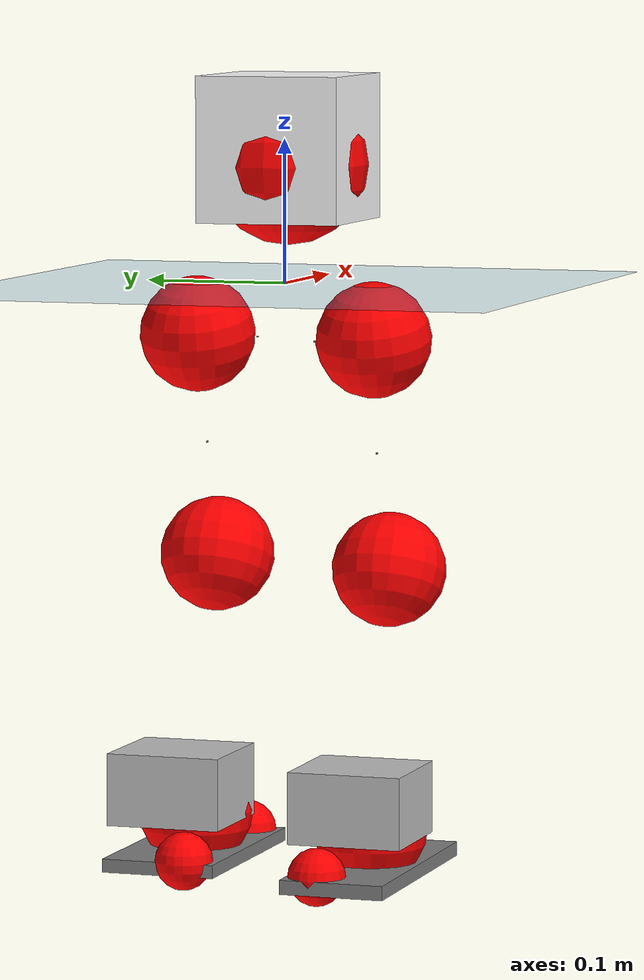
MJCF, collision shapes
<mujoco model="pi_12dof_release_v1">
  <compiler angle="radian" assetdir="assets" balanceinertia="true" inertiafromgeom="false"/>

  <option timestep="0.005" density="1.2" viscosity="2e-05"/>

  <size nkey="1"/>

  <visual>
    <quality shadowsize="8192"/>
    <map shadowclip="0.5"/>
  </visual>

  <default>
    <default class="/">
      <joint armature="0.01" damping="0.01" frictionloss="0.01"/>
      <geom contype="0" conaffinity="0" group="1" solref="-1000 -80"/>
      <site size="0.01 0.005 0.005" group="5"/>
      <general forcelimited="true" biastype="affine" gainprm="20" biasprm="0 -20 -0.5"/>
      <default class="foot">
        <geom size="0.0845 0.036 0.005" type="box" condim="6" group="4" priority="1" friction="0.9 0.2 0.2" solimp="0.015 1 0.005"/>
      </default>
      <default class="reward_collision_sphere">
        <geom group="5" rgba="1 0 0 1"/>
      </default>
    </default>
  </default>

  <asset>
    <texture type="skybox" colorspace="auto" name="//unnamed_texture_0" builtin="gradient" rgb1="0.95 0.95 0.95" rgb2="0.95 0.95 0.95" width="100" height="600"/>
    <texture type="2d" colorspace="auto" name="texplane" builtin="checker" rgb1="0.345 0.575 0.748" rgb2="0.345 0.575 0.748" markrgb="1 1 1" width="512" height="512"/>
    <material name="MatPlane" class="/" texture="texplane" texuniform="true" texrepeat="2 2" specular="0.9"/>
    <mesh name="baselink_1" class="/" file="baselink_1.STL"/>
    <mesh name="r_hip_pitch_link" class="/" file="r_hip_pitch_link.STL"/>
    <mesh name="r_hip_roll_link" class="/" file="r_hip_roll_link.STL"/>
    <mesh name="r_thigh_link" class="/" file="r_thigh_link.STL"/>
    <mesh name="r_calf_link" class="/" file="r_calf_link.STL"/>
    <mesh name="r_ankle_pitch_link" class="/" file="r_ankle_pitch_link.STL"/>
    <mesh name="r_ankle_roll_link" class="/" file="r_ankle_roll_link.STL"/>
    <mesh name="l_hip_pitch_link" class="/" file="l_hip_pitch_link.STL"/>
    <mesh name="l_hip_roll_link" class="/" file="l_hip_roll_link.STL"/>
    <mesh name="l_thigh_link" class="/" file="l_thigh_link.STL"/>
    <mesh name="l_calf_link" class="/" file="l_calf_link.STL"/>
    <mesh name="l_ankle_pitch_link" class="/" file="l_ankle_pitch_link.STL"/>
    <mesh name="l_ankle_roll_link" class="/" file="l_ankle_roll_link.STL"/>
  </asset>

  <worldbody>
    <geom name="floor" class="/" size="100 100 0.125" type="plane" group="0" material="MatPlane"/>
    <light name="toplight_shadow" class="/" pos="0 0 5" dir="0.0990148 0.0990148 -0.990148" type="directional" ambient="0.04 0.04 0.04" diffuse="0.55 0.55 0.55" specular="0.12 0.12 0.12"/>
    <light name="toplight_fill" class="/" pos="0 0 5" dir="0.0990148 0.0990148 -0.990148" type="directional" castshadow="false" ambient="0.04 0.04 0.04" diffuse="0.3 0.3 0.3" specular="0.08 0.08 0.08"/>
    <body name="trunk" pos="-0.000309613 -0.00281909 -0.000871543" quat="0.999999 -0.000298555 -0.00131787 0.000408602">
      <inertial pos="-7.08407e-05 -0.00196685 0.0509525" quat="0.703566 0.008408 0.0040936 0.710568" mass="2.22948" diaginertia="0.0102524 0.00314976 0.00998856"/>
      <joint name="//unnamed_joint_0" type="free"/>
      <geom name="//unnamed_geom_1" class="/" type="mesh" density="0" rgba="1 1 1 1" mesh="baselink_1"/>
      <geom name="//unnamed_geom_2" class="/" size="0.0503614 0.0503614 0.0503614" pos="0 0 0.0951378" type="box" rgba="1 1 1 1"/>
      <geom name="//unnamed_geom_3" class="reward_collision_sphere" size="0.0553975" pos="0 0 0.0832455"/>
      <site name="imu" class="/" pos="0.0052657 -0.00389317 -0.00383597" size="0.0100723"/>
      <camera name="track" class="/" pos="0 -1.62832 0" quat="0.707107 0.707107 0 0" mode="trackcom"/>
      <camera name="ego_camera" class="/" pos="0.0763727 0 0.21406" quat="-0.5 -0.5 0.5 0.5"/>
      <body name="r_hip_pitch_link" pos="0.00230241 -0.0180243 -0.0392138" quat="0.992216 -0.000281596 -0.124529 -0.000322386">
        <inertial pos="0.00146101 -0.0482872 -0.00175063" quat="-0.0229047 0.703929 -0.0279621 0.70935" mass="0.37653" diaginertia="0.000119747 3.40292e-05 0.000198423"/>
        <joint name="r_hip_pitch_joint" class="/" pos="0 0 0" axis="-0.0039417 -0.999978 -0.00528538" stiffness="0.00181562" range="-1.69256 1.29919" armature="0.0105396" damping="0.0217732" frictionloss="0.0111018"/>
        <geom name="//unnamed_geom_4" class="/" type="mesh" density="0" rgba="0.75294 0.75294 0.75294 1" mesh="r_hip_pitch_link"/>
        <geom name="//unnamed_geom_5" class="/" size="0.000503614 0.000503614 0.000503614" type="box" rgba="0.75294 0.75294 0.75294 1"/>
        <body name="r_hip_roll_link" pos="0.00298092 -0.0422356 0.00129472" quat="1 -5.0781e-05 0.00047558 -0.000545509">
          <inertial pos="-0.00264357 5.28399e-05 -0.0732465" quat="0.699958 -0.0791021 -0.0840126 0.704801" mass="0.411844" diaginertia="0.000357274 0.00010228 0.000306751"/>
          <joint name="r_hip_roll_joint" class="/" pos="0 0 0" axis="-0.999931 0.0116627 0.00144929" range="-0.117651 0.497946" armature="0.0115721" damping="0.023591" frictionloss="0.0106032"/>
          <geom name="//unnamed_geom_6" class="/" type="mesh" density="0" rgba="0.75294 0.75294 0.75294 1" mesh="r_hip_roll_link"/>
          <geom name="//unnamed_geom_7" class="/" size="0.000503614 0.000503614 0.000503614" type="box" rgba="0.75294 0.75294 0.75294 1"/>
          <geom name="//unnamed_geom_8" class="reward_collision_sphere" size="0.0402891"/>
          <body name="r_thigh_link" pos="0.0010045 0.00450336 -0.0838336" quat="1 0.000584784 1.97796e-05 -0.00054964">
            <inertial pos="-0.00183119 -0.00160282 -0.0592763" quat="0.741434 0.671021 0.000261268 0.00262813" mass="0.112844" diaginertia="0.000131584 3.35504e-05 0.000134764"/>
            <joint name="r_thigh_joint" class="/" pos="0 0 0" axis="0.00913848 -0.00513252 -0.999945" range="-0.336061 0.559242" armature="0.0114993" damping="0.00180397" frictionloss="0.0109956"/>
            <geom name="//unnamed_geom_9" class="/" type="mesh" density="0" rgba="0.75294 0.75294 0.75294 1" mesh="r_thigh_link"/>
            <geom name="//unnamed_geom_10" class="/" size="0.000503614 0.000503614 0.000503614" type="box" rgba="0.75294 0.75294 0.75294 1"/>
            <body name="r_calf_link" pos="-0.000853986 -0.00282832 -0.0862955" quat="0.947663 -9.97102e-06 0.319272 -2.63804e-05">
              <inertial pos="0.000255764 0.00112187 -0.0846843" quat="0.999961 0.00399835 -0.00780438 0.000829153" mass="0.817251" diaginertia="0.00372645 0.00125296 0.000422568"/>
              <joint name="r_calf_joint" class="/" pos="0 0 0" axis="0.00542074 -0.999971 0.00537386" range="-1.69961 0.661715" armature="0.0101588" damping="0" frictionloss="0.0111806"/>
              <geom name="//unnamed_geom_11" class="/" type="mesh" density="0" rgba="0.75294 0.75294 0.75294 1" mesh="r_calf_link"/>
              <geom name="//unnamed_geom_12" class="/" size="0.000503614 0.000503614 0.000503614" type="box" rgba="0.75294 0.75294 0.75294 1"/>
              <geom name="//unnamed_geom_13" class="reward_collision_sphere" size="0.0402891"/>
              <body name="r_ankle_pitch_link" pos="-0.00137223 -2.12449e-05 -0.168433" quat="0.98007 -3.09216e-05 -0.198652 7.05901e-06">
                <inertial pos="0.00708046 0.000216017 0.00177071" quat="0.00321618 0.70415 0.00278878 0.710039" mass="0.181668" diaginertia="0.000325716 7.94193e-05 0.000285258"/>
                <joint name="r_ankle_pitch_joint" class="/" pos="0 0 0" axis="0.000444602 -1 0.000595667" stiffness="0.000786026" range="-1.35376 0.459343" armature="0.0112502" damping="0.00687524" frictionloss="0.0112617"/>
                <geom name="//unnamed_geom_14" class="/" type="mesh" density="0" rgba="0.75294 0.75294 0.75294 1" mesh="r_ankle_pitch_link"/>
                <geom name="//unnamed_geom_15" class="/" size="0.0392819 0.0402891 0.0251807" type="box" rgba="0.75294 0.75294 0.75294 1"/>
                <body name="r_ankle_roll_link" pos="0.0772389 0.000821739 0.00203241" quat="1 9.15152e-05 -1.2813e-05 9.00981e-06">
                  <inertial pos="-0.0271409 0.00297669 -0.0181513" quat="0.556636 0.429803 0.442345 0.556557" mass="0.539399" diaginertia="0.0012367 0.000389046 0.000662947"/>
                  <joint name="r_ankle_roll_joint" class="/" pos="0 0 0" axis="-0.999993 0.00350562 0.00156377" stiffness="0.00936946" range="-0.123085 0.206443" armature="0.0106361" damping="0.0230758" frictionloss="0.0105373"/>
                  <geom name="//unnamed_geom_16" class="/" type="mesh" density="0" rgba="0.75294 0.75294 0.75294 1" mesh="r_ankle_roll_link"/>
                  <geom name="//unnamed_geom_17" class="/" type="mesh" rgba="0.75294 0.75294 0.75294 1" mesh="r_ankle_roll_link"/>
                  <geom name="right_foot" class="foot" size="0.089683 0.0367883 0.00500037" pos="-0.0519335 0 -0.0523258"/>
                  <geom name="//unnamed_geom_19" class="reward_collision_sphere" size="0.0402891" pos="-0.0509152 0 -0.0237844"/>
                  <geom name="//unnamed_geom_20" class="reward_collision_sphere" size="0.0201446" pos="0.0152745 0.0162832 -0.0475689"/>
                  <geom name="//unnamed_geom_21" class="reward_collision_sphere" size="0.0201446" pos="-0.122196 0.0162832 -0.0475689"/>
                  <site name="right_foot" class="foot" pos="-0.0519335 0 -0.0523258" size="0.0100723"/>
                </body>
              </body>
            </body>
          </body>
        </body>
      </body>
      <body name="l_hip_pitch_link" pos="-0.00306876 0.0215212 -0.0361871" quat="0.992243 -0.000256259 -0.124316 -1.25888e-05">
        <inertial pos="0.000446294 0.0436556 0.0027154" quat="-0.0385884 0.705604 0.0295093 0.706939" mass="0.383822" diaginertia="0.000138393 3.57767e-05 0.000242373"/>
        <joint name="l_hip_pitch_joint" class="/" pos="0 0 0" axis="0.00302656 0.999995 -0.00086741" stiffness="0.00896991" range="-1.27371 1.8034" armature="0.0103256" damping="0.00683817" frictionloss="0.00981012"/>
        <geom name="//unnamed_geom_22" class="/" type="mesh" density="0" rgba="0.75294 0.75294 0.75294 1" mesh="l_hip_pitch_link"/>
        <geom name="//unnamed_geom_23" class="/" size="0.000503614 0.000503614 0.000503614" type="box" rgba="0.75294 0.75294 0.75294 1"/>
        <body name="l_hip_roll_link" pos="-0.00191071 0.043224 0.00183412" quat="1 0.000320511 0.000881473 0.000199275">
          <inertial pos="-0.00278475 0.00112353 -0.0716281" quat="0.701836 -0.0807387 -0.0897326 0.702037" mass="0.389854" diaginertia="0.000354394 0.000102855 0.000315744"/>
          <joint name="l_hip_roll_joint" class="/" pos="0 0 0" axis="-0.999925 -0.0119283 0.00264114" stiffness="0.00412421" range="-0.500451 0.135818" armature="0.0107973" damping="0.00561926" frictionloss="0.00877796"/>
          <geom name="//unnamed_geom_24" class="/" type="mesh" density="0" rgba="0.75294 0.75294 0.75294 1" mesh="l_hip_roll_link"/>
          <geom name="//unnamed_geom_25" class="/" size="0.000503614 0.000503614 0.000503614" type="box" rgba="0.75294 0.75294 0.75294 1"/>
          <geom name="//unnamed_geom_26" class="reward_collision_sphere" size="0.0402891"/>
          <body name="l_thigh_link" pos="-0.0021839 -0.00085817 -0.0793953" quat="0.999999 -3.99471e-05 0.000638693 -0.00108913">
            <inertial pos="0.000358154 0.00137253 -0.0551102" quat="0.677105 0.735877 -0.00125931 0.0035313" mass="0.112955" diaginertia="0.000130788 3.23701e-05 0.000131784"/>
            <joint name="l_thigh_joint" class="/" pos="0 0 0" axis="0.000520825 -0.00187266 -0.999998" stiffness="0.00960939" range="-0.581932 0.303285" armature="0.00866453" damping="0" frictionloss="0.010603"/>
            <geom name="//unnamed_geom_27" class="/" type="mesh" density="0" rgba="0.75294 0.75294 0.75294 1" mesh="l_thigh_link"/>
            <geom name="//unnamed_geom_28" class="/" size="0.000503614 0.000503614 0.000503614" type="box" rgba="0.75294 0.75294 0.75294 1"/>
            <body name="l_calf_link" pos="-0.00223129 -0.00114614 -0.0826807" quat="0.947575 0.000386844 0.319534 -0.000304425">
              <inertial pos="-0.000729212 0.00117592 -0.083533" quat="0.999984 0.00216486 -0.00235771 0.00475009" mass="0.810279" diaginertia="0.00375212 0.00122819 0.000408245"/>
              <joint name="l_calf_joint" class="/" pos="0 0 0" axis="-0.00182361 0.999935 0.0112203" range="-0.599118 1.63079" armature="0.00904917" damping="0.0111811" frictionloss="0.0103661"/>
              <geom name="//unnamed_geom_29" class="/" type="mesh" density="0" rgba="0.75294 0.75294 0.75294 1" mesh="l_calf_link"/>
              <geom name="//unnamed_geom_30" class="/" size="0.000503614 0.000503614 0.000503614" type="box" rgba="0.75294 0.75294 0.75294 1"/>
              <geom name="//unnamed_geom_31" class="reward_collision_sphere" size="0.0402891"/>
              <body name="l_ankle_pitch_link" pos="-0.00286904 0.00346785 -0.168585" quat="0.980188 -0.000322762 -0.19807 -0.000300449">
                <inertial pos="0.00570651 -0.00367127 0.00104176" quat="0.00175293 0.70762 0.00127672 0.70659" mass="0.181447" diaginertia="0.000341197 7.86471e-05 0.000274896"/>
                <joint name="l_ankle_pitch_joint" class="/" pos="0 0 0" axis="-1.88851e-05 0.999989 -0.00475361" stiffness="0.0045419" range="-0.483694 1.3008" armature="0.00898866" damping="0.0216052" frictionloss="0.0086896"/>
                <geom name="//unnamed_geom_32" class="/" type="mesh" density="0" rgba="0.75294 0.75294 0.75294 1" mesh="l_ankle_pitch_link"/>
                <geom name="//unnamed_geom_33" class="/" size="0.0392819 0.0402891 0.0251807" type="box" rgba="0.75294 0.75294 0.75294 1"/>
                <body name="l_ankle_roll_link" pos="0.0785306 -0.00118167 0.0015914" quat="1 9.12671e-05 -0.000168831 0.000173617">
                  <inertial pos="-0.0279008 -0.00116429 -0.0168524" quat="0.560619 0.430528 0.434908 0.557858" mass="0.546771" diaginertia="0.00124441 0.000378081 0.000680292"/>
                  <joint name="l_ankle_roll_joint" class="/" pos="0 0 0" axis="-0.999996 0.00262388 -0.000594607" range="-0.120425 0.161942" armature="0.0104742" damping="0" frictionloss="0.00935831"/>
                  <geom name="//unnamed_geom_34" class="/" type="mesh" density="0" rgba="0.75294 0.75294 0.75294 1" mesh="l_ankle_roll_link"/>
                  <geom name="//unnamed_geom_35" class="/" type="mesh" rgba="0.75294 0.75294 0.75294 1" mesh="l_ankle_roll_link"/>
                  <geom name="left_foot" class="foot" size="0.0795454 0.0400643 0.00464135" pos="-0.0519335 0 -0.0523258"/>
                  <geom name="//unnamed_geom_37" class="reward_collision_sphere" size="0.0402891" pos="-0.0509152 0 -0.0237844"/>
                  <geom name="//unnamed_geom_38" class="reward_collision_sphere" size="0.0201446" pos="0.0152745 -0.0162832 -0.0475689"/>
                  <geom name="//unnamed_geom_39" class="reward_collision_sphere" size="0.0201446" pos="-0.122196 -0.0162832 -0.0475689"/>
                  <site name="left_foot" class="foot" pos="-0.0519335 0 -0.0523258" size="0.0100723"/>
                </body>
              </body>
            </body>
          </body>
        </body>
      </body>
    </body>
  </worldbody>

  <contact>
    <pair class="/" geom1="floor" geom2="right_foot" name="//unnamed_contact_1"/>
    <pair class="/" geom1="floor" geom2="left_foot" name="//unnamed_contact_0"/>
  </contact>

  <actuator>
    <general name="r_hip_pitch_joint" class="/" joint="r_hip_pitch_joint" forcerange="-19.8091 19.8091" gainprm="19.1219" biasprm="0 -19.1219 -0.539944"/>
    <general name="r_hip_roll_joint" class="/" joint="r_hip_roll_joint" forcerange="-22.3218 22.3218" gainprm="19.1219" biasprm="0 -19.1219 -0.539944"/>
    <general name="r_thigh_joint" class="/" joint="r_thigh_joint" forcerange="-21.1726 21.1726" gainprm="19.1219" biasprm="0 -19.1219 -0.539944"/>
    <general name="r_calf_joint" class="/" joint="r_calf_joint" forcerange="-20.4539 20.4539" gainprm="19.1219" biasprm="0 -19.1219 -0.539944"/>
    <general name="r_ankle_pitch_joint" class="/" joint="r_ankle_pitch_joint" forcerange="-21.2945 21.2945" gainprm="19.1219" biasprm="0 -19.1219 -0.539944"/>
    <general name="r_ankle_roll_joint" class="/" joint="r_ankle_roll_joint" forcerange="-23.3268 23.3268" gainprm="19.1219" biasprm="0 -19.1219 -0.539944"/>
    <general name="l_hip_pitch_joint" class="/" joint="l_hip_pitch_joint" forcerange="-22.9682 22.9682" gainprm="19.1219" biasprm="0 -19.1219 -0.539944"/>
    <general name="l_hip_roll_joint" class="/" joint="l_hip_roll_joint" forcerange="-20.8618 20.8618" gainprm="19.1219" biasprm="0 -19.1219 -0.539944"/>
    <general name="l_thigh_joint" class="/" joint="l_thigh_joint" forcerange="-20.7472 20.7472" gainprm="19.1219" biasprm="0 -19.1219 -0.539944"/>
    <general name="l_calf_joint" class="/" joint="l_calf_joint" forcerange="-19.2735 19.2735" gainprm="19.1219" biasprm="0 -19.1219 -0.539944"/>
    <general name="l_ankle_pitch_joint" class="/" joint="l_ankle_pitch_joint" forcerange="-21.4591 21.4591" gainprm="19.1219" biasprm="0 -19.1219 -0.539944"/>
    <general name="l_ankle_roll_joint" class="/" joint="l_ankle_roll_joint" forcerange="-18.8757 18.8757" gainprm="19.1219" biasprm="0 -19.1219 -0.539944"/>
  </actuator>

  <sensor>
    <gyro site="imu" name="imu_angular_velocity"/>
    <velocimeter site="imu" name="imu_linear_velocity"/>
    <framelinvel objtype="site" objname="left_foot" name="left_foot_global_linear_velocity"/>
    <framelinvel objtype="site" objname="right_foot" name="right_foot_global_linear_velocity"/>
  </sensor>

  <keyframe>
    <key name="home" qpos="0 0 0.291 1 0 0 0 0.4 0 0 -0.8 0.4 0 -0.4 0 0 0.8 -0.4 0"/>
  </keyframe>
</mujoco>
